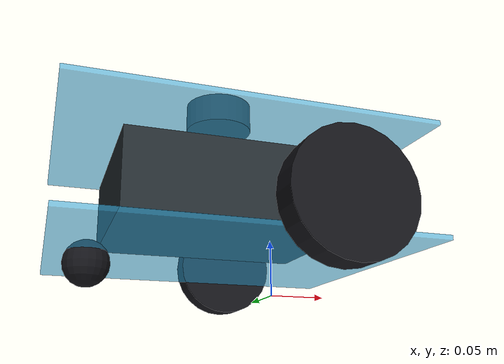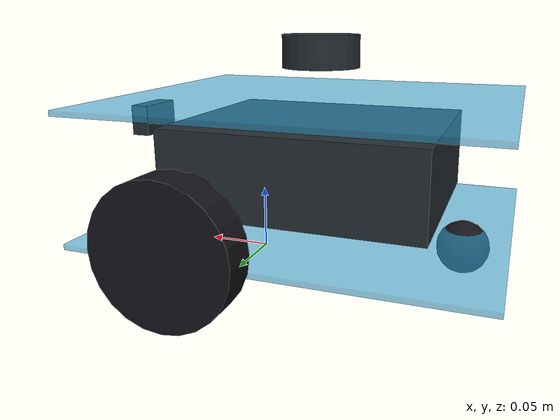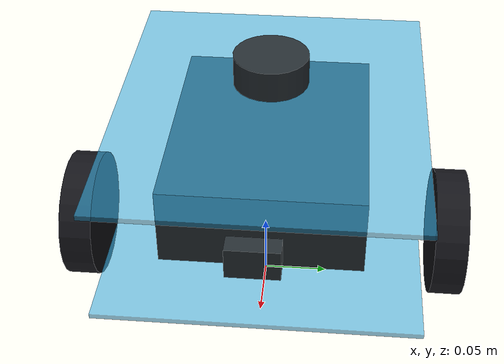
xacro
<?xml version="1.0"?>
<robot xmlns:xacro="http://www.ros.org/wiki/xacro" name="vacuum">
  <!-- All geometry and masses are simulation placeholders, not measured specifications.
       Wheel radius/separation must match controllers.yaml until launch-time generation is added. -->
  <xacro:arg name="controllers_file" default="$(find vacuum_sim)/config/controllers.yaml"/>
  <xacro:arg name="camera_width" default="320"/>
  <xacro:arg name="camera_height" default="240"/>
  <xacro:arg name="camera_rate" default="5"/>
  <xacro:property name="wheel_radius" value="0.05"/>
  <xacro:property name="wheel_separation" value="0.29"/>
  <xacro:property name="wheel_width" value="0.025"/>
  <xacro:property name="body_x" value="0.30"/>
  <xacro:property name="body_y" value="0.25"/>
  <xacro:property name="body_z" value="0.10"/>
  <xacro:property name="body_mass" value="3.0"/>
  <material name="acrylic"><color rgba="0.2 0.65 0.85 0.6"/></material>
  <material name="rubber"><color rgba="0.08 0.08 0.10 1"/></material>
  <material name="sensor"><color rgba="0.15 0.18 0.20 1"/></material>

  <link name="base_footprint"/>
  <!-- The axle is ahead of the body center, keeping the center of mass within
       the two-wheel/caster support triangle. base_footprint stays at the axle. -->
  <joint name="base_joint" type="fixed"><parent link="base_footprint"/><child link="base_link"/><origin xyz="-0.05 0 0.08"/></joint>
  <link name="base_link">
    <inertial><mass value="${body_mass}"/><inertia ixx="${body_mass*(body_y**2+body_z**2)/12}" iyy="${body_mass*(body_x**2+body_z**2)/12}" izz="${body_mass*(body_x**2+body_y**2)/12}" ixy="0" ixz="0" iyz="0"/></inertial>
    <collision><geometry><box size="${body_x} ${body_y} ${body_z}"/></geometry></collision>
    <visual><origin xyz="0 0 -0.048"/><geometry><box size="${body_x} ${body_y} 0.004"/></geometry><material name="acrylic"/></visual>
    <visual><origin xyz="0 0 0.048"/><geometry><box size="${body_x} ${body_y} 0.004"/></geometry><material name="acrylic"/></visual>
    <visual><geometry><box size="0.20 0.16 0.065"/></geometry><material name="sensor"/></visual>
  </link>

  <xacro:macro name="wheel" params="side sign">
    <link name="${side}_wheel">
      <inertial><mass value="0.12"/><inertia ixx="${0.12*(3*wheel_radius**2+wheel_width**2)/12}" iyy="${0.12*wheel_radius**2/2}" izz="${0.12*(3*wheel_radius**2+wheel_width**2)/12}" ixy="0" ixz="0" iyz="0"/></inertial>
      <visual><origin rpy="${pi/2} 0 0"/><geometry><cylinder radius="${wheel_radius}" length="${wheel_width}"/></geometry><material name="rubber"/></visual>
      <collision><origin rpy="${pi/2} 0 0"/><geometry><cylinder radius="${wheel_radius}" length="${wheel_width}"/></geometry></collision>
    </link>
    <joint name="${side}_wheel_joint" type="continuous">
      <parent link="base_link"/><child link="${side}_wheel"/>
      <origin xyz="0.05 ${sign*wheel_separation/2} ${wheel_radius-0.08}"/><axis xyz="0 1 0"/>
      <limit effort="3.0" velocity="10.0"/><dynamics damping="0.01" friction="0.0"/>
    </joint>
    <gazebo reference="${side}_wheel"><mu1>1.0</mu1><mu2>1.0</mu2></gazebo>
  </xacro:macro>
  <xacro:wheel side="left" sign="1"/><xacro:wheel side="right" sign="-1"/>

  <!-- A low-friction support sphere approximates a caster, not its swivel mechanics. -->
  <joint name="caster_joint" type="fixed"><parent link="base_link"/><child link="caster"/><origin xyz="-0.115 0 -0.06"/></joint>
  <link name="caster">
    <inertial><mass value="0.08"/><inertia ixx="0.0000128" iyy="0.0000128" izz="0.0000128" ixy="0" ixz="0" iyz="0"/></inertial>
    <visual><geometry><sphere radius="0.02"/></geometry><material name="rubber"/></visual>
    <collision><geometry><sphere radius="0.02"/></geometry></collision>
  </link>
  <gazebo reference="caster_joint"><preserveFixedJoint>true</preserveFixedJoint></gazebo>
  <gazebo reference="caster"><mu1>0.01</mu1><mu2>0.01</mu2></gazebo>

  <joint name="lidar_joint" type="fixed"><parent link="base_link"/><child link="lidar_link"/><origin xyz="0 0 0.085"/></joint>
  <link name="lidar_link">
    <inertial><mass value="0.05"/><inertia ixx="0.00001" iyy="0.00001" izz="0.00002" ixy="0" ixz="0" iyz="0"/></inertial>
    <visual><geometry><cylinder radius="0.03" length="0.025"/></geometry><material name="sensor"/></visual>
    <collision><geometry><cylinder radius="0.03" length="0.025"/></geometry></collision>
  </link>
  <gazebo reference="lidar_joint"><preserveFixedJoint>true</preserveFixedJoint></gazebo>
  <gazebo reference="lidar_link">
    <!-- Generic 2-D lidar. These are not claims about the C1's exact scan specifications. -->
    <sensor name="lidar" type="gpu_lidar">
      <topic>/scan</topic><gz_frame_id>lidar_link</gz_frame_id><update_rate>10</update_rate><always_on>true</always_on>
      <lidar><scan><horizontal><samples>360</samples><resolution>1</resolution><min_angle>${-pi}</min_angle><max_angle>${pi}</max_angle></horizontal></scan>
        <range><min>0.08</min><max>12.0</max><resolution>0.01</resolution></range>
        <noise><type>gaussian</type><mean>0</mean><stddev>0.005</stddev></noise>
      </lidar>
    </sensor>
  </gazebo>

  <joint name="camera_joint" type="fixed"><parent link="base_link"/><child link="camera_link"/><origin xyz="0.155 0 0.025"/></joint>
  <link name="camera_link">
    <inertial><mass value="0.03"/><inertia ixx="0.000004" iyy="0.000004" izz="0.000004" ixy="0" ixz="0" iyz="0"/></inertial>
    <visual><geometry><box size="0.015 0.04 0.025"/></geometry><material name="sensor"/></visual>
  </link>
  <joint name="camera_optical_joint" type="fixed"><parent link="camera_link"/><child link="camera_optical_frame"/><origin rpy="${-pi/2} 0 ${-pi/2}"/></joint>
  <link name="camera_optical_frame"/>
  <gazebo reference="camera_joint"><preserveFixedJoint>true</preserveFixedJoint></gazebo>
  <gazebo reference="camera_link">
    <sensor name="camera" type="camera"><topic>/camera/image_raw</topic><gz_frame_id>camera_optical_frame</gz_frame_id>
      <update_rate>$(arg camera_rate)</update_rate><always_on>true</always_on>
      <camera><horizontal_fov>1.0472</horizontal_fov><image><width>$(arg camera_width)</width><height>$(arg camera_height)</height><format>R8G8B8</format></image><clip><near>0.03</near><far>15</far></clip><camera_info_topic>/camera/camera_info</camera_info_topic></camera>
    </sensor>
  </gazebo>

  <ros2_control name="VacuumSimulation" type="system">
    <hardware><plugin>gz_ros2_control/GazeboSimSystem</plugin></hardware>
    <joint name="left_wheel_joint"><command_interface name="velocity"/><state_interface name="position"/><state_interface name="velocity"/></joint>
    <joint name="right_wheel_joint"><command_interface name="velocity"/><state_interface name="position"/><state_interface name="velocity"/></joint>
  </ros2_control>
  <gazebo>
    <plugin filename="libgz_ros2_control-system.so" name="gz_ros2_control::GazeboSimROS2ControlPlugin">
      <parameters>$(arg controllers_file)</parameters>
      <ros><remapping>/diff_drive_controller/odom:=/odom</remapping></ros>
    </plugin>
  </gazebo>
</robot>
